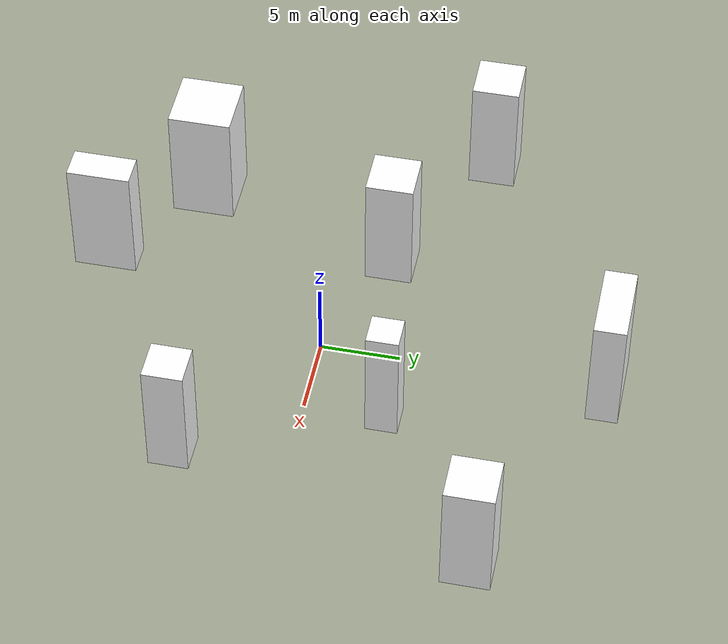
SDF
<?xml version="1.0"?>
<sdf version="1.6">
  <!-- 白色障碍物方块1 -->
  <model name="obstacle_1">
    <static>true</static>
    <pose>5 5 4 0 0 0</pose>
    <link name="obstacle_link">
      <collision name="collision">
        <geometry>
          <box>
            <size>2 2 8</size>
          </box>
        </geometry>
      </collision>
      <visual name="visual">
        <geometry>
          <box>
            <size>2 2 8</size>
          </box>
        </geometry>
        <material>
          <ambient>1 1 1 1</ambient>
          <diffuse>1 1 1 1</diffuse>
        </material>
      </visual>
    </link>
  </model>

  <!-- 白色障碍物方块2 -->
  <model name="obstacle_2">
    <static>true</static>
    <pose>-8 3 4 0 0 0</pose>
    <link name="obstacle_link">
      <collision name="collision">
        <geometry>
          <box>
            <size>3 3 8</size>
          </box>
        </geometry>
      </collision>
      <visual name="visual">
        <geometry>
          <box>
            <size>3 3 8</size>
          </box>
        </geometry>
        <material>
          <ambient>1 1 1 1</ambient>
          <diffuse>1 1 1 1</diffuse>
        </material>
      </visual>
    </link>
  </model>

  <!-- 白色障碍物方块3 -->
  <model name="obstacle_3">
    <static>true</static>
    <pose>10 -7 4 0 0 0</pose>
    <link name="obstacle_link">
      <collision name="collision">
        <geometry>
          <box>
            <size>2.5 2.5 8</size>
          </box>
        </geometry>
      </collision>
      <visual name="visual">
        <geometry>
          <box>
            <size>2.5 2.5 8</size>
          </box>
        </geometry>
        <material>
          <ambient>1 1 1 1</ambient>
          <diffuse>1 1 1 1</diffuse>
        </material>
      </visual>
    </link>
  </model>

  <!-- 白色障碍物方块4 -->
  <model name="obstacle_4">
    <static>true</static>
    <pose>-12 -10 4 0 0 0</pose>
    <link name="obstacle_link">
      <collision name="collision">
        <geometry>
          <box>
            <size>4 4 8</size>
          </box>
        </geometry>
      </collision>
      <visual name="visual">
        <geometry>
          <box>
            <size>4 4 8</size>
          </box>
        </geometry>
        <material>
          <ambient>1 1 1 1</ambient>
          <diffuse>1 1 1 1</diffuse>
        </material>
      </visual>
    </link>
  </model>

  <!-- 白色障碍物方块5 -->
  <model name="obstacle_5">
    <static>true</static>
    <pose>15 12 4 0 0 0</pose>
    <link name="obstacle_link">
      <collision name="collision">
        <geometry>
          <box>
            <size>3 3 8</size>
          </box>
        </geometry>
      </collision>
      <visual name="visual">
        <geometry>
          <box>
            <size>3 3 8</size>
          </box>
        </geometry>
        <material>
          <ambient>1 1 1 1</ambient>
          <diffuse>1 1 1 1</diffuse>
        </material>
      </visual>
    </link>
  </model>

  <!-- 白色障碍物方块6 -->
  <model name="obstacle_6">
    <static>true</static>
    <pose>-5 -15 4 0 0 0</pose>
    <link name="obstacle_link">
      <collision name="collision">
        <geometry>
          <box>
            <size>2 4 8</size>
          </box>
        </geometry>
      </collision>
      <visual name="visual">
        <geometry>
          <box>
            <size>2 4 8</size>
          </box>
        </geometry>
        <material>
          <ambient>1 1 1 1</ambient>
          <diffuse>1 1 1 1</diffuse>
        </material>
      </visual>
    </link>
  </model>

  <!-- 白色障碍物方块7 -->
  <model name="obstacle_7">
    <static>true</static>
    <pose>0 18 4 0 0 0</pose>
    <link name="obstacle_link">
      <collision name="collision">
        <geometry>
          <box>
            <size>5 2 8</size>
          </box>
        </geometry>
      </collision>
      <visual name="visual">
        <geometry>
          <box>
            <size>5 2 8</size>
          </box>
        </geometry>
        <material>
          <ambient>1 1 1 1</ambient>
          <diffuse>1 1 1 1</diffuse>
        </material>
      </visual>
    </link>
  </model>

  <!-- 白色障碍物方块8 -->
  <model name="obstacle_8">
    <static>true</static>
    <pose>-18 8 4 0 0 0</pose>
    <link name="obstacle_link">
      <collision name="collision">
        <geometry>
          <box>
            <size>3 3 8</size>
          </box>
        </geometry>
      </collision>
      <visual name="visual">
        <geometry>
          <box>
            <size>3 3 8</size>
          </box>
        </geometry>
        <material>
          <ambient>1 1 1 1</ambient>
          <diffuse>1 1 1 1</diffuse>
        </material>
      </visual>
    </link>
  </model>
</sdf>
